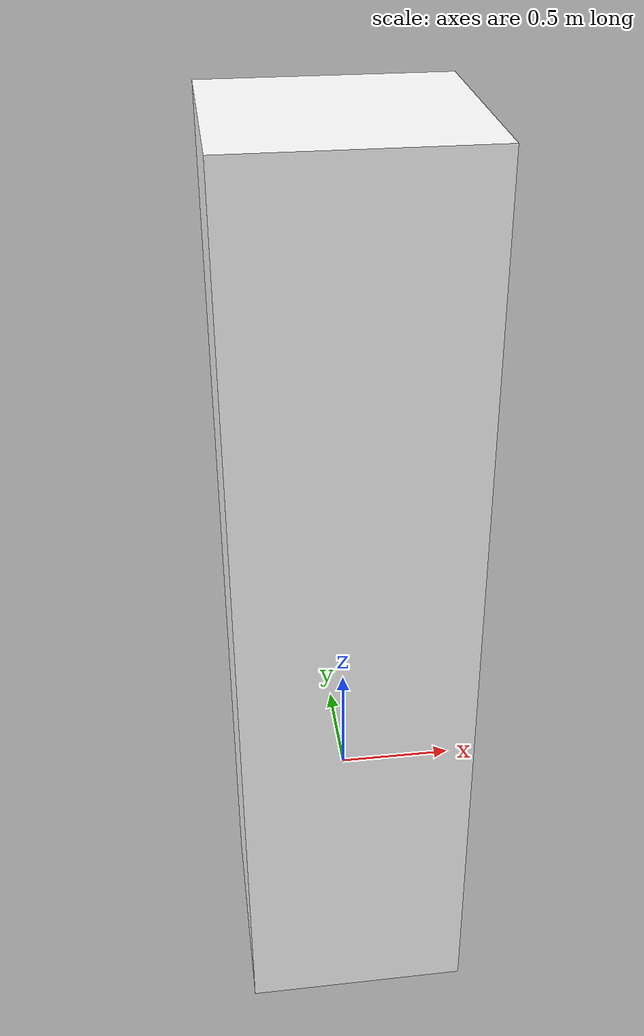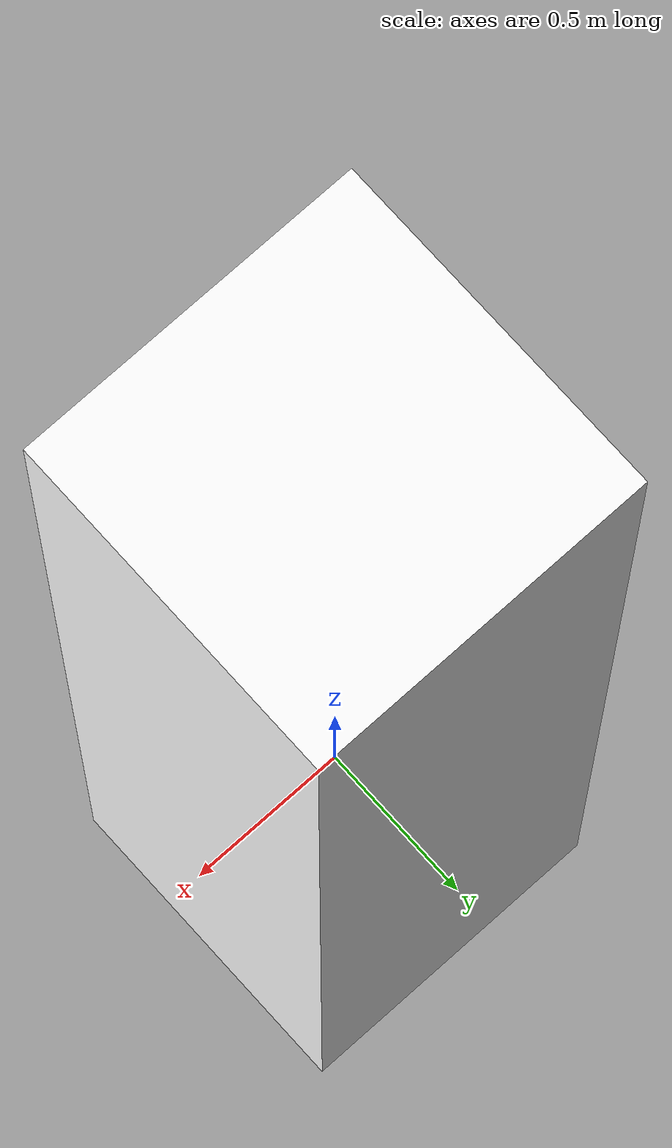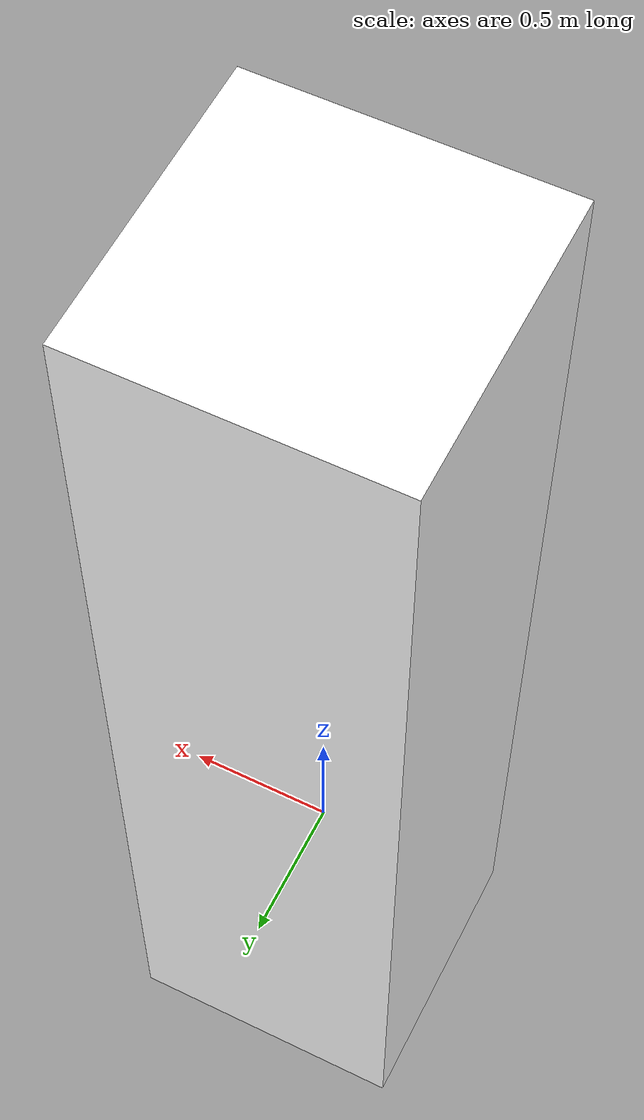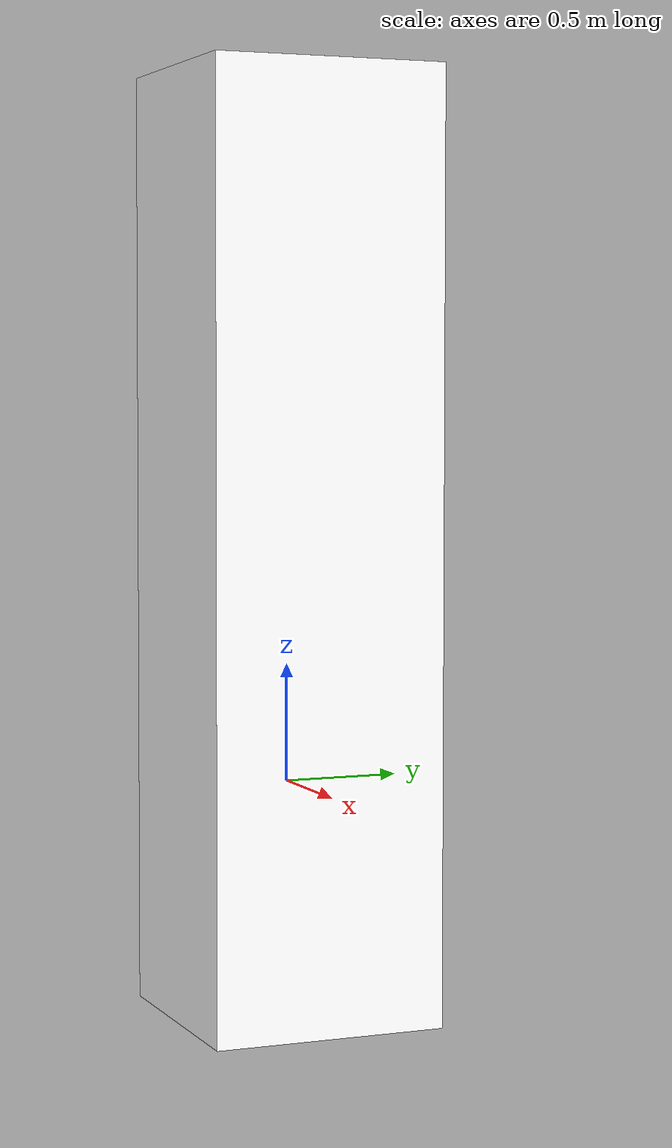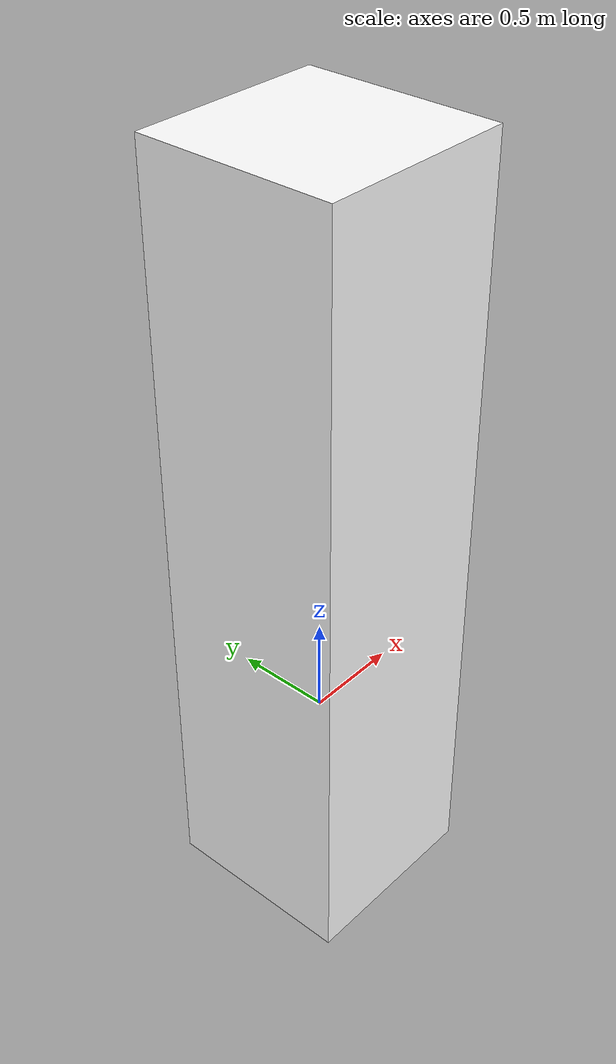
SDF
<?xml version="1.0"?>
<sdf version="1.6">
  <model name="Color Tutorial Model">
    <static>true</static>
    <link name="robot_link">
      <collision name="body_collision">
        <geometry>
          <box>
            <size>1 1 1</size>
          </box>
        </geometry>
      </collision>

      <visual name="body_visual">
        <pose>0 0 1 0 1.57079 0</pose>
        <geometry>
          <box>
            <size>4 1 1</size>
          </box>
        </geometry>
        <material>
          <ambient>0 0 0 1</ambient>
          <diffuse>1 1 1 1</diffuse>
          <specular>0 1 1 1</specular>
          <emissive>0 1 0 0</emissive>
        </material>
      </visual>
    </link>
  </model>
</sdf>
